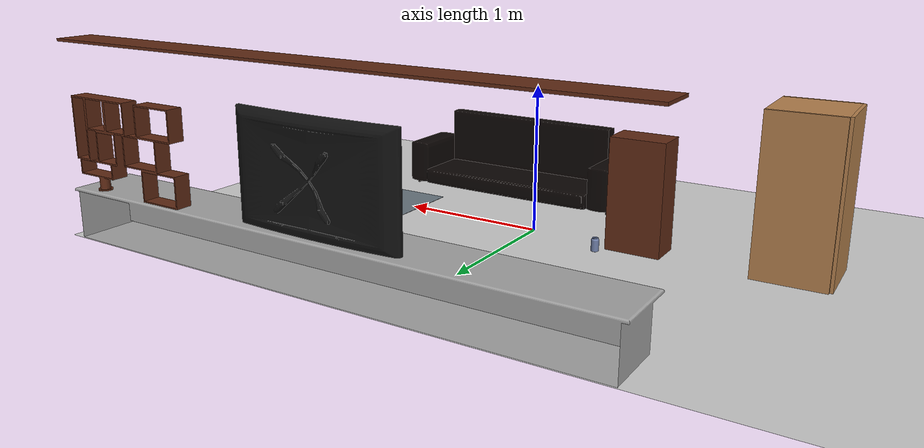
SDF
<sdf version="1.7">
 <world name="room">
  <light name="sun" type="directional">
   <pose>0 0 10 0 -0 0</pose>
   <diffuse>0.8 0.8 0.8 1</diffuse>
   <specular>0.2 0.2 0.2 1</specular>
   <attenuation>
    <range>1000</range>
    <constant>0.9</constant>
    <linear>0.01</linear>
    <quadratic>0.001</quadratic>
   </attenuation>
   <direction>-0.5 0.1 -0.9</direction>
   <spot><inner_angle>0</inner_angle><outer_angle>0</outer_angle><falloff>0</falloff></spot>
  </light>
  <model name="floor">
   <static>1</static>
   <link name="floor_link">
    <collision name="floor_collision">
     <geometry><plane><normal>0 0 1</normal><size>5.16 3.55</size></plane></geometry>
     <surface><friction><ode><mu>100</mu><mu2>50</mu2></ode></friction></surface>
    </collision>
    <visual name="floor_visual">
     <cast_shadows>0</cast_shadows>
     <geometry><plane><normal>0 0 1</normal><size>5.16 3.55</size></plane></geometry>
     <material>
      <script>
       <uri>model://lc_floor/materials/scripts</uri>
       <uri>model://lc_floor/materials/textures</uri>
       <name>floorMat/Diffuse</name>
      </script>
     </material>
    </visual>
   </link>
  </model>
  <model name="bookshelf">
   <static>1</static>
   <link name="bookshelf_link">
    <collision name="bs_collision">
     <geometry><box><size>0.91 0.11 0.63</size></box></geometry>
     <surface><friction><ode><mu>100</mu><mu2>50</mu2></ode></friction></surface>
    </collision>
    <visual name="bs_mesh">
     <geometry><mesh><uri>model://lc_bookshelf/meshes/bookshelf.dae</uri></mesh></geometry>
     <material>
      <script>
       <uri>model://lc_bookshelf/materials/scripts</uri>
       <uri>model://lc_bookshelf/materials/textures</uri>
       <name>bookshelfMat/Diffuse</name>
      </script>
     </material>
    </visual>
   </link>
   <pose>2.05631 1.69254 0.680848 0 -0 0</pose>
  </model>
  <model name="cabinet">
   <static>1</static>
   <link name="cabinet_link">
    <collision name="cabinet_collision">
     <pose>0 0 0.1 0 -0 0</pose>
     <geometry><box><size>0.247 0.199 0.505</size></box></geometry>
     <surface><friction><ode><mu>30</mu><mu2>30</mu2></ode></friction></surface>
    </collision>
    <visual name="cabinet_mesh">
     <geometry><mesh><uri>model://lc_cabinet/meshes/cabinet.dae</uri></mesh></geometry>
     <material>
      <script>
       <uri>model://lc_cabinet/materials/scripts</uri>
       <uri>model://lc_cabinet/materials/textures</uri>
       <name>cabinetMat/Diffuse</name>
      </script>
     </material>
    </visual>
   </link>
   <pose>-1.38001 1.70508 0.822405 0 -0 0</pose>
  </model>
  <model name="can">
   <static>0</static>
   <link name="can_link">
    <collision name="can_collision">
     <geometry><box><size>0.05 0.05 0.091</size></box></geometry>
     <surface><friction><ode><mu>5</mu><mu2>5</mu2></ode></friction></surface>
    </collision>
    <visual name="can_mesh">
     <cast_shadows>0</cast_shadows>
     <geometry><mesh><uri>model://lc_can/meshes/can.dae</uri></mesh></geometry>
     <material>
      <script>
       <uri>model://lc_can/materials/scripts</uri>
       <uri>model://lc_can/materials/textures</uri>
       <name>canMat/Diffuse</name>
      </script>
     </material>
    </visual>
    <inertial>
     <inertia><ixx>1</ixx><ixy>0</ixy><ixz>0</ixz><iyy>1</iyy><iyz>0</iyz><izz>1</izz></inertia>
     <mass>1</mass>
    </inertial>
   </link>
   <pose>-0.523097 0.169707 0.045549 0.000682 0.001275 0.210128</pose>
  </model>
  <model name="shelf">
   <static>1</static>
   <link name="shelf_link">
    <pose>0 0 0.3 0 -0 0</pose>
    <collision name="shelf_collision">
     <geometry><box><size>4.01 0.253 0.0175</size></box></geometry>
     <surface><friction><ode><mu>100</mu><mu2>50</mu2></ode></friction></surface>
    </collision>
    <visual name="shelf_mesh">
     <geometry><mesh><uri>model://lc_shelf/meshes/shelf.dae</uri></mesh></geometry>
     <material>
      <script>
       <uri>model://lc_shelf/materials/scripts</uri>
       <uri>model://lc_shelf/materials/textures</uri>
       <name>shelfMat/Diffuse</name>
      </script>
     </material>
    </visual>
   </link>
   <pose>0.50964 1.65593 1.01491 0 -0 0</pose>
  </model>
  <model name="lc_sofa">
   <static>1</static>
   <link name="sofa_link">
    <collision name="sofa_collision"><geometry><box><size>1.7 0.51 0.55</size></box></geometry></collision>
    <visual name="sofa_mesh">
     <geometry><mesh><uri>model://lc_sofa/meshes/sofa.dae</uri></mesh></geometry>
     <material>
      <script>
       <uri>model://lc_sofa/materials/scripts</uri>
       <uri>model://lc_sofa/materials/textures</uri>
       <name>sofaMat/Diffuse</name>
      </script>
     </material>
    </visual>
   </link>
   <pose>0.542039 -0.822537 0.200018 0 -0 0</pose>
  </model>
  <model name="table">
   <static>1</static>
   <link name="table_link">
    <pose>0 0 0.3 0 -0 0</pose>
    <collision name="ctable_collision">
     <geometry><box><size>1.16 0.6 0.19</size></box></geometry>
     <surface>
      <friction><ode><mu>10</mu><mu2>10</mu2><slip1>0.2</slip1><slip2>0.2</slip2></ode></friction>
     </surface>
    </collision>
    <visual name="table_mesh">
     <geometry><mesh><uri>model://lc_table/meshes/table.dae</uri></mesh></geometry>
     <material>
      <script>
       <uri>model://lc_table/materials/scripts</uri>
       <uri>model://lc_table/materials/textures</uri>
       <name>tableMat/Diffuse</name>
      </script>
     </material>
    </visual>
   </link>
   <pose>1.18423 0.520275 -0.197504 0 -0 0</pose>
  </model>
  <model name="lc_tv">
   <static>1</static>
   <link name="tv_link">
    <collision name="tv_collision">
     <geometry><box><size>1.15 0.16 0.72</size></box></geometry>
     <surface><friction><ode><mu>100</mu><mu2>50</mu2></ode></friction></surface>
    </collision>
    <visual name="tv_mesh"><geometry><mesh><uri>model://lc_tv/meshes/tv.dae</uri></mesh></geometry></visual>
   </link>
   <pose>0.500186 1.70152 0.676686 0 -0 0</pose>
  </model>
  <model name="tv-stand">
   <static>1</static>
   <link name="tv_stand_link">
    <collision name="tv_stand_collision">
     <geometry><box><size>3.9 0.44 0.34</size></box></geometry>
     <surface><friction><ode><mu>100</mu><mu2>50</mu2></ode></friction></surface>
    </collision>
    <visual name="tv_stand_mesh">
     <geometry><mesh><uri>model://lc_tv_stand/meshes/tv_stand.dae</uri></mesh></geometry>
     <material>
      <script>
       <uri>model://lc_tv_stand/materials/scripts</uri>
       <uri>model://lc_tv_stand/materials/textures</uri>
       <name>tvStandMat/Diffuse</name>
      </script>
     </material>
    </visual>
   </link>
   <pose>0.570066 1.54442 0.167182 0 -0 0</pose>
  </model>
  <gravity>0 0 -9.8</gravity>
  <magnetic_field>6e-06 2.3e-05 -4.2e-05</magnetic_field>
  <atmosphere type="adiabatic"/>
  <physics type="ode">
   <max_step_size>0.001</max_step_size>
   <real_time_factor>1</real_time_factor>
   <real_time_update_rate>1000</real_time_update_rate>
  </physics>
  <scene><ambient>0.4 0.4 0.4 1</ambient><background>0.7 0.7 0.7 1</background><shadows>1</shadows></scene>
  <audio><device>default</device></audio>
  <spherical_coordinates>
   <surface_model>EARTH_WGS84</surface_model>
   <latitude_deg>0</latitude_deg>
   <longitude_deg>0</longitude_deg>
   <elevation>0</elevation>
   <heading_deg>0</heading_deg>
  </spherical_coordinates>
  <model name="cabinet_0">
   <static>1</static>
   <link name="cabinet_bottom_plate">
    <inertial>
     <pose>0 0 -1 0 -0 0</pose>
     <inertia><ixx>2.05</ixx><ixy>0</ixy><ixz>0</ixz><iyy>2.05</iyy><iyz>0</iyz><izz>2.05</izz></inertia>
     <mass>25</mass>
    </inertial>
    <collision name="cabinet_bottom_plate_geom">
     <pose>0 0 0.01 0 -0 0</pose>
     <geometry><box><size>0.45 0.45 0.02</size></box></geometry>
    </collision>
    <visual name="cabinet_bottom_plate_geom_visual">
     <pose>0 0 0.01 0 -0 0</pose>
     <geometry><box><size>0.45 0.45 0.02</size></box></geometry>
     <material>
      <script><uri>file://media/materials/scripts/gazebo.material</uri><name>Gazebo/Wood</name></script>
     </material>
    </visual>
    <collision name="cabinet_bottom_plate_geom_cabinet_back_plate">
     <pose>0.235 0 0.51 0 -0 0</pose>
     <geometry><box><size>0.02 0.45 1.02</size></box></geometry>
    </collision>
    <visual name="cabinet_bottom_plate_geom_cabinet_back_plate_visual">
     <pose>0.235 0 0.51 0 -0 0</pose>
     <geometry><box><size>0.02 0.45 1.02</size></box></geometry>
     <material>
      <script><uri>file://media/materials/scripts/gazebo.material</uri><name>Gazebo/Wood</name></script>
     </material>
    </visual>
    <collision name="cabinet_bottom_plate_geom_cabinet_left_plate">
     <pose>0 0.235 0.51 0 -0 0</pose>
     <geometry><box><size>0.45 0.02 1.02</size></box></geometry>
    </collision>
    <visual name="cabinet_bottom_plate_geom_cabinet_left_plate_visual">
     <pose>0 0.235 0.51 0 -0 0</pose>
     <geometry><box><size>0.45 0.02 1.02</size></box></geometry>
     <material>
      <script><uri>file://media/materials/scripts/gazebo.material</uri><name>Gazebo/Wood</name></script>
     </material>
    </visual>
    <collision name="cabinet_bottom_plate_geom_cabinet_middle_plate">
     <pose>0 0 0.51 0 -0 0</pose>
     <geometry><box><size>0.45 0.45 0.02</size></box></geometry>
    </collision>
    <visual name="cabinet_bottom_plate_geom_cabinet_middle_plate_visual">
     <pose>0 0 0.51 0 -0 0</pose>
     <geometry><box><size>0.45 0.45 0.02</size></box></geometry>
     <material>
      <script><uri>file://media/materials/scripts/gazebo.material</uri><name>Gazebo/Wood</name></script>
     </material>
    </visual>
    <collision name="cabinet_bottom_plate_geom_cabinet_right_plate">
     <pose>0 -0.235 0.51 0 -0 0</pose>
     <geometry><box><size>0.45 0.02 1.02</size></box></geometry>
    </collision>
    <visual name="cabinet_bottom_plate_geom_cabinet_right_plate_visual">
     <pose>0 -0.235 0.51 0 -0 0</pose>
     <geometry><box><size>0.45 0.02 1.02</size></box></geometry>
     <material>
      <script><uri>file://media/materials/scripts/gazebo.material</uri><name>Gazebo/Wood</name></script>
     </material>
    </visual>
    <collision name="cabinet_bottom_plate_geom_cabinet_top_plate">
     <pose>0 0 1.01 0 -0 0</pose>
     <geometry><box><size>0.45 0.45 0.02</size></box></geometry>
    </collision>
    <visual name="cabinet_bottom_plate_geom_cabinet_top_plate_visual">
     <pose>0 0 1.01 0 -0 0</pose>
     <geometry><box><size>0.45 0.45 0.02</size></box></geometry>
     <material>
      <script><uri>file://media/materials/scripts/gazebo.material</uri><name>Gazebo/Wood</name></script>
     </material>
    </visual>
   </link>
   <pose>-1.69793 -0.131618 0 0 0 -3.12425</pose>
  </model>
 </world>
</sdf>
